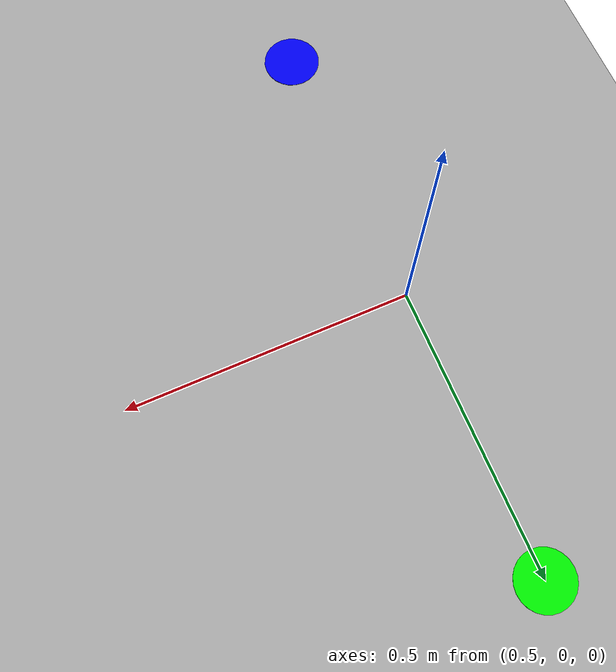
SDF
<?xml version="1.0" ?>
<sdf version="1.9">
  <world name="default">
    <light name="sun" type="directional">
      <pose>0 0 10 0 0 0</pose>
      <diffuse>0.8 0.8 0.8 1</diffuse>
      <specular>0.2 0.2 0.2 1</specular>
      <direction>-0.5 0.5 -1</direction>
    </light>
    <model name="ground_plane">
      <static>true</static>
      <link name="ground_link">
        <collision name="ground_collision">
          <geometry>
            <plane>
              <normal>0 0 1</normal>
              <size>100 100</size>
            </plane>
          </geometry>
        </collision>
        <visual name="ground_visual">
          <geometry>
            <plane>
              <normal>0 0 1</normal>
              <size>100 100</size>
            </plane>
          </geometry>
          <material>
            <ambient>0.7 0.7 0.7 1</ambient>
            <diffuse>0.7 0.7 0.7 1</diffuse>
          </material>
        </visual>
      </link>
    </model>
    <plugin filename="gz-sim-physics-system" name="gz::sim::systems::Physics"/>
    <plugin filename="gz-sim-scene-broadcaster-system" name="gz::sim::systems::SceneBroadcaster"/>
    <plugin filename="gz-sim-sensors-system" name="gz::sim::systems::Sensors"/>
    <plugin filename="gz-sim-user-commands-system" name="gz::sim::systems::UserCommands"/>
    <plugin filename="gz-sim-imu-system" name="gz::sim::systems::Imu"/>
    <plugin filename="gz-sim-contact-system" name="gz::sim::systems::Contact"/>
    <plugin filename="gz-sim-odometry-system" name="gz::sim::systems::Odometry"/>
    <model name="green_floor_marker">
      <static>true</static>
      <pose>0.5 0.5 0.0005 0 0 0</pose>
      <link name="marker_link">
        <visual name="marker_visual">
          <geometry>
            <cylinder>
              <radius>0.05</radius>
              <length>0.001</length>
            </cylinder>
          </geometry>
          <material>
            <ambient>0 1 0 1</ambient>
            <diffuse>0 1 0 1</diffuse>
          </material>
        </visual>
      </link>
    </model>
    <model name="blue_floor_marker">
      <static>true</static>
      <pose>0.5 -0.5 0.0005 0 0 0</pose>
      <link name="marker_link">
        <visual name="marker_visual">
          <geometry>
            <cylinder>
              <radius>0.05</radius>
              <length>0.001</length>
            </cylinder>
          </geometry>
          <material>
            <ambient>0 0 1 1</ambient>
            <diffuse>0 0 1 1</diffuse>
          </material>
        </visual>
      </link>
    </model>
  </world>
</sdf>
